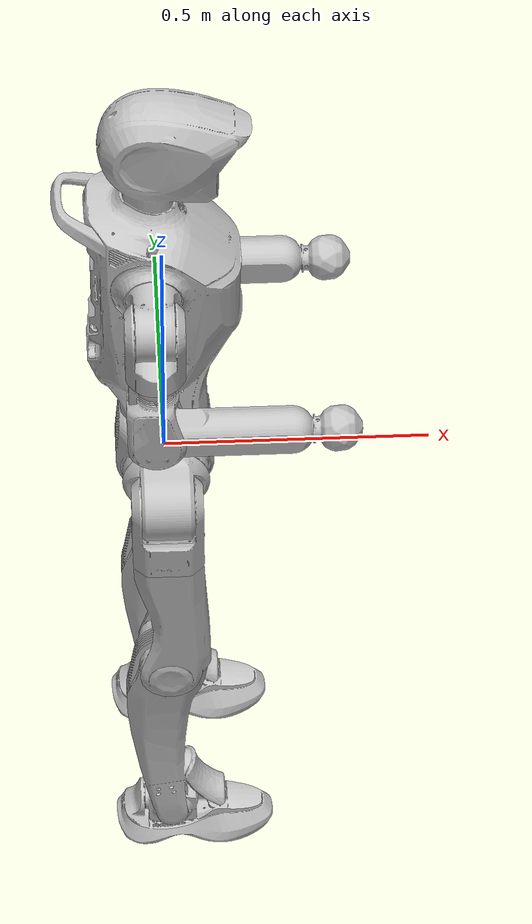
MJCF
<mujoco model="DR02_S">
  <compiler angle="radian" meshdir="meshes/" />
  <asset>
    <mesh name="base_link" file="base_link.STL" />
    <mesh name="body" file="body.STL" />
    <mesh name="left_shoulder_y_link" file="left_shoulder_y_link.STL" />
    <mesh name="left_shoulder_x_link" file="left_shoulder_x_link.STL" />
    <mesh name="left_shoulder_z_link" file="left_shoulder_z_link.STL" />
    <mesh name="left_elbow_link" file="left_elbow_link.STL" />
    <mesh name="right_shoulder_y_link" file="right_shoulder_y_link.STL" />
    <mesh name="right_shoulder_x_link" file="right_shoulder_x_link.STL" />
    <mesh name="right_shoulder_z_link" file="right_shoulder_z_link.STL" />
    <mesh name="right_elbow_link" file="right_elbow_link.STL" />
    <mesh name="left_hip_y_link" file="left_hip_y_link.STL" />
    <mesh name="left_hip_x_link" file="left_hip_x_link.STL" />
    <mesh name="left_hip_z_link" file="left_hip_z_link.STL" />
    <mesh name="left_knee_link" file="left_knee_link.STL" />
    <mesh name="left_ankle_y_link" file="left_ankle_y_link.STL" />
    <mesh name="left_ankle_x_link" file="left_ankle_x_link.STL" />
    <mesh name="right_hip_y_link" file="right_hip_y_link.STL" />
    <mesh name="right_hip_x_link" file="right_hip_x_link.STL" />
    <mesh name="right_hip_z_link" file="right_hip_z_link.STL" />
    <mesh name="right_knee_link" file="right_knee_link.STL" />
    <mesh name="right_ankle_y_link" file="right_ankle_y_link.STL" />
    <mesh name="right_ankle_x_link" file="right_ankle_x_link.STL" />
    <material name="base_link_mat" rgba="0.7529 0.7529 0.7529 1" specular="0" />
    <material name="body_mat" rgba="0.7529 0.7529 0.7529 1" specular="0" />
    <material name="left_shoulder_y_link_mat" rgba="0.7529 0.7529 0.7529 1" specular="0" />
    <material name="left_shoulder_x_link_mat" rgba="0.7529 0.7529 0.7529 1" specular="0" />
    <material name="left_shoulder_z_link_mat" rgba="0.7529 0.7529 0.7529 1" specular="0" />
    <material name="left_elbow_link_mat" rgba="0.7529 0.7529 0.7529 1" specular="0" />
    <material name="right_shoulder_y_link_mat" rgba="0.7529 0.7529 0.7529 1" specular="0" />
    <material name="right_shoulder_x_link_mat" rgba="0.7529 0.7529 0.7529 1" specular="0" />
    <material name="right_shoulder_z_link_mat" rgba="0.7529 0.7529 0.7529 1" specular="0" />
    <material name="right_elbow_link_mat" rgba="0.7529 0.7529 0.7529 1" specular="0" />
    <material name="left_hip_y_link_mat" rgba="0.7529 0.7529 0.7529 1" specular="0" />
    <material name="left_hip_x_link_mat" rgba="0.7529 0.7529 0.7529 1" specular="0" />
    <material name="left_hip_z_link_mat" rgba="0.7529 0.7529 0.7529 1" specular="0" />
    <material name="left_knee_link_mat" rgba="0.7529 0.7529 0.7529 1" specular="0" />
    <material name="left_ankle_y_link_mat" rgba="0.7529 0.7529 0.7529 1" specular="0" />
    <material name="left_ankle_x_link_mat" rgba="0.7529 0.7529 0.7529 1" specular="0" />
    <material name="right_hip_y_link_mat" rgba="0.7529 0.7529 0.7529 1" specular="0" />
    <material name="right_hip_x_link_mat" rgba="0.7529 0.7529 0.7529 1" specular="0" />
    <material name="right_hip_z_link_mat" rgba="0.7529 0.7529 0.7529 1" specular="0" />
    <material name="right_knee_link_mat" rgba="0.7529 0.7529 0.7529 1" specular="0" />
    <material name="right_ankle_y_link_mat" rgba="0.7529 0.7529 0.7529 1" specular="0" />
    <material name="right_ankle_x_link_mat" rgba="0.7529 0.7529 0.7529 1" specular="0" />
  </asset>

  <worldbody>
    <body name="base_link" pos="0 0 0">
      <freejoint/>
      <inertial pos="0.000093 0.000006 0.013442" mass="8.06269" fullinertia="0.047801 0.034616 0.038003 0.000012 -0.000497 -0.000003"/>
      <geom pos="0 0 0" group="1" contype="0" conaffinity="0" material="base_link_mat" type="mesh" mesh="base_link" />
      <geom pos="0 0 0" quat="0.7071068 0.7071068 0 0" rgba="0.9373 0.2667 0.2667 1" group="3" contype="1" conaffinity="1" type="cylinder" size="0.09 0.085" />
      <body name="body" pos="0 0 0.29">
        <joint name="waist_z_joint" type="hinge" axis="0 0 1" limited="true" range="-1.7453 3.6652" damping="0" frictionloss="0"/>
        <inertial pos="-0.02277 0.004208 0.185037" mass="21.337219" fullinertia="0.556188 0.598136 0.184687 0.001211 0.007316 -0.007763"/>
        <geom pos="0 0 0" group="1" contype="0" conaffinity="0" material="body_mat" type="mesh" mesh="body" />
        <geom pos="0 0 -0.13" rgba="0.9373 0.2667 0.2667 1" group="3" contype="1" conaffinity="1" type="box" size="0.075 0.075 0.06" />
        <geom pos="-0.01 0 0" rgba="0.9373 0.2667 0.2667 1" group="3" contype="1" conaffinity="1" type="box" size="0.11 0.12 0.05" />
        <geom pos="0 0 0.2" rgba="0.9373 0.2667 0.2667 1" group="3" contype="1" conaffinity="1" type="box" size="0.125 0.125 0.13" />
        <geom pos="-0.02 0 0.37" rgba="0.9373 0.2667 0.2667 1" group="3" contype="1" conaffinity="1" type="cylinder" size="0.05 0.03" />
        <geom pos="0 0 0.5" rgba="0.9373 0.2667 0.2667 1" group="3" contype="1" conaffinity="1" type="sphere" size="0.12" />
        <body name="left_shoulder_y_link" pos="-0.02 0.22315 0.2349">
          <joint name="left_shoulder_y_joint" type="hinge" axis="0 1 0" limited="true" range="-3.8397 1.5708" damping="0" frictionloss="0"/>
          <inertial pos="0.001479 -0.014833 0.000165" mass="1.400436" fullinertia="0.001991 0.001019 0.001997 0.000033 0.000001 -0.000002"/>
          <geom pos="0 0 0" group="1" contype="0" conaffinity="0" material="left_shoulder_y_link_mat" type="mesh" mesh="left_shoulder_y_link" />
          <body name="left_shoulder_x_link" pos="0 0 0">
            <joint name="left_shoulder_x_joint" type="hinge" axis="1 0 0" limited="true" range="-0.349066 3.49066" damping="0" frictionloss="0"/>
            <inertial pos="0.000432 0 -0.048362" mass="0.697075" fullinertia="0.001572 0.002243 0.001601 0 -0.000004 0"/>
            <geom pos="0 0 0" group="1" contype="0" conaffinity="0" material="left_shoulder_x_link_mat" type="mesh" mesh="left_shoulder_x_link" />
            <geom pos="0 0 -0.09" rgba="0.9373 0.2667 0.2667 1" group="3" contype="1" conaffinity="1" type="cylinder" size="0.055 0.0275" />
            <geom pos="0 0 0" quat="0.7071068 0 0.7071068 0" rgba="0.9373 0.2667 0.2667 1" group="3" contype="1" conaffinity="1" type="cylinder" size="0.055 0.055" />
            <body name="left_shoulder_z_link" pos="0 0 -0.265">
              <joint name="left_shoulder_z_joint" type="hinge" axis="0 0 1" limited="true" range="-2.9671 2.9671" damping="0" frictionloss="0"/>
              <inertial pos="-0.00426 -0.0003 0.094408" mass="1.720926" fullinertia="0.00612 0.005808 0.001952 0.000004 0.000286 0.000054"/>
              <geom pos="0 0 0" group="1" contype="0" conaffinity="0" material="left_shoulder_z_link_mat" type="mesh" mesh="left_shoulder_z_link" />
              <geom pos="-0.005 0 0.08" rgba="0.9373 0.2667 0.2667 1" group="3" contype="1" conaffinity="1" type="cylinder" size="0.057 0.02" />
              <body name="left_elbow_link" pos="0 0 0" quat="0.7071055 0 -0.7071081 0">
                <joint name="left_elbow_joint" type="hinge" axis="0 1 0" limited="true" range="-0.767945 1.74533" damping="0" frictionloss="0"/>
                <inertial pos="0.000055 0.000466 -0.101685" mass="1.710969" fullinertia="0.035402 0.035398 0.001296 0.000012 0.000011 0.000089"/>
                <geom pos="0 0 0" group="1" contype="0" conaffinity="0" material="left_elbow_link_mat" type="mesh" mesh="left_elbow_link" />
                <geom pos="0 0 0" quat="0.7071068 0.7071068 0 0" rgba="0.9373 0.2667 0.2667 1" group="3" contype="1" conaffinity="1" type="cylinder" size="0.055 0.055" />
                <geom pos="0 0 -0.17" rgba="0.9373 0.2667 0.2667 1" group="3" contype="1" conaffinity="1" type="cylinder" size="0.045 0.11" />
                <geom pos="0 0 -0.34" rgba="0.9373 0.2667 0.2667 1" group="3" contype="1" conaffinity="1" type="sphere" size="0.045" />
              </body>
            </body>
          </body>
        </body>
        <body name="right_shoulder_y_link" pos="-0.02 -0.22315 0.2349">
          <joint name="right_shoulder_y_joint" type="hinge" axis="0 1 0" limited="true" range="-3.8397 1.5708" damping="0" frictionloss="0"/>
          <inertial pos="0.001479 0.014833 -0.000165" mass="1.400436" fullinertia="0.001991 0.001019 0.001997 -0.000033 -0.000001 -0.000002"/>
          <geom pos="0 0 0" group="1" contype="0" conaffinity="0" material="right_shoulder_y_link_mat" type="mesh" mesh="right_shoulder_y_link" />
          <body name="right_shoulder_x_link" pos="0 0 0">
            <joint name="right_shoulder_x_joint" type="hinge" axis="1 0 0" limited="true" range="-3.49066 0.349066" damping="0" frictionloss="0"/>
            <inertial pos="0.000432 0 -0.048362" mass="0.697075" fullinertia="0.001572 0.002243 0.001601 0 -0.000004 0"/>
            <geom pos="0 0 0" group="1" contype="0" conaffinity="0" material="right_shoulder_x_link_mat" type="mesh" mesh="right_shoulder_x_link" />
            <geom pos="0 0 -0.09" rgba="0.9373 0.2667 0.2667 1" group="3" contype="1" conaffinity="1" type="cylinder" size="0.055 0.0275" />
            <geom pos="0 0 0" quat="0.7071068 0 0.7071068 0" rgba="0.9373 0.2667 0.2667 1" group="3" contype="1" conaffinity="1" type="cylinder" size="0.055 0.055" />
            <body name="right_shoulder_z_link" pos="0 0 -0.265">
              <joint name="right_shoulder_z_joint" type="hinge" axis="0 0 1" limited="true" range="-2.9671 2.9671" damping="0" frictionloss="0"/>
              <inertial pos="-0.00426 -0.0003 0.094408" mass="1.720926" fullinertia="0.00612 0.005808 0.001952 0.000004 0.000286 0.000054"/>
              <geom pos="0 0 0" group="1" contype="0" conaffinity="0" material="right_shoulder_z_link_mat" type="mesh" mesh="right_shoulder_z_link" />
              <geom pos="-0.005 0 0.08" rgba="0.9373 0.2667 0.2667 1" group="3" contype="1" conaffinity="1" type="cylinder" size="0.057 0.02" />
              <body name="right_elbow_link" pos="0 0 0" quat="0.7071055 0 -0.7071081 0">
                <joint name="right_elbow_joint" type="hinge" axis="0 1 0" limited="true" range="-0.767945 1.74533" damping="0" frictionloss="0"/>
                <inertial pos="0.000055 0.000466 -0.101685" mass="1.710969" fullinertia="0.035402 0.035398 0.001296 0.000012 0.000011 0.000089"/>
                <geom pos="0 0 0" group="1" contype="0" conaffinity="0" material="right_elbow_link_mat" type="mesh" mesh="right_elbow_link" />
                <geom pos="0 0 0" quat="0.7071068 0.7071068 0 0" rgba="0.9373 0.2667 0.2667 1" group="3" contype="1" conaffinity="1" type="cylinder" size="0.055 0.055" />
                <geom pos="0 0 -0.17" rgba="0.9373 0.2667 0.2667 1" group="3" contype="1" conaffinity="1" type="cylinder" size="0.045 0.11" />
                <geom pos="0 0 -0.34" rgba="0.9373 0.2667 0.2667 1" group="3" contype="1" conaffinity="1" type="sphere" size="0.045" />
              </body>
            </body>
          </body>
        </body>
        <body name="imu_head_link" pos="-0.0003333 0.021947 0.56429">
        </body>
        <body name="imu_base_link" pos="-0.0003333 0.0014869 -0.3546">
        </body>
      </body>
      <body name="left_hip_y_link" pos="0 0.1614 0">
        <joint name="left_hip_y_joint" type="hinge" axis="0 1 0" limited="true" range="-2.7925 1.5708" damping="0" frictionloss="0"/>
        <inertial pos="0.004243 -0.007887 0.001484" mass="2.633192" fullinertia="0.005574 0.005409 0.005665 0.000149 -0.000057 -0.000149"/>
        <geom pos="0 0 0" group="1" contype="0" conaffinity="0" material="left_hip_y_link_mat" type="mesh" mesh="left_hip_y_link" />
        <geom pos="0 0 0" quat="0.7071068 0 0.7071068 0" rgba="0.9373 0.2667 0.2667 1" group="3" contype="1" conaffinity="1" type="cylinder" size="0.07 0.0675" />
        <body name="left_hip_x_link" pos="0 0 0">
          <joint name="left_hip_x_joint" type="hinge" axis="1 0 0" limited="true" range="-0.349066 2.618" damping="0" frictionloss="0"/>
          <inertial pos="0.001042 0.00317 -0.074161" mass="1.131509" fullinertia="0.004145 0.005869 0.003914 0.00001 0.000131 -0.000028"/>
          <geom pos="0 0 0" group="1" contype="0" conaffinity="0" material="left_hip_x_link_mat" type="mesh" mesh="left_hip_x_link" />
          <body name="left_hip_z_link" pos="0 0 -0.1282">
            <joint name="left_hip_z_joint" type="hinge" axis="0 0 1" limited="true" range="-0.5236 3.6652" damping="0" frictionloss="0"/>
            <inertial pos="0.008747 -0.002664 -0.111374" mass="2.684372" fullinertia="0.030123 0.028514 0.007636 0.000088 -0.001323 0.001236"/>
            <geom pos="0 0 0" group="1" contype="0" conaffinity="0" material="left_hip_z_link_mat" type="mesh" mesh="left_hip_z_link" />
            <geom pos="0 0 -0.115" rgba="0.9373 0.2667 0.2667 1" group="3" contype="1" conaffinity="1" type="cylinder" size="0.07 0.11" />
            <body name="left_knee_link" pos="0 0 -0.2912">
              <joint name="left_knee_joint" type="hinge" axis="0 1 0" limited="true" range="-0.17453 2.4958" damping="0" frictionloss="0"/>
              <inertial pos="-0.004924 -0.001316 -0.092649" mass="4.246652" fullinertia="0.087826 0.087013 0.009313 0.000053 0.002385 -0.001498"/>
              <geom pos="0 0 0" group="1" contype="0" conaffinity="0" material="left_knee_link_mat" type="mesh" mesh="left_knee_link" />
              <geom pos="0 0 0" quat="0.7071068 0.7071068 0 0" rgba="0.9373 0.2667 0.2667 1" group="3" contype="1" conaffinity="1" type="cylinder" size="0.06 0.07" />
              <geom pos="-0.02 0 -0.21" rgba="0.9373 0.2667 0.2667 1" group="3" contype="1" conaffinity="1" type="cylinder" size="0.06 0.14" />
              <body name="left_ankle_y_link" pos="0 0 -0.41">
                <joint name="left_ankle_y_joint" type="hinge" axis="0 1 0" limited="true" range="-1.0472 0.7854" damping="0" frictionloss="0"/>
                <inertial pos="0.000479 0.003282 0.000327" mass="1.377835" fullinertia="0.001529 0.001772 0.001906 -0.000012 0.000002 -0.000003"/>
                <geom pos="0 0 0" group="1" contype="0" conaffinity="0" material="left_ankle_y_link_mat" type="mesh" mesh="left_ankle_y_link" />
                <geom pos="0 0 0" quat="0.7071068 0.7071068 0 0" rgba="0.9373 0.2667 0.2667 1" group="3" contype="1" conaffinity="1" type="cylinder" size="0.044 0.055" />
                <body name="left_ankle_x_link" pos="0 0 0">
                  <joint name="left_ankle_x_joint" type="hinge" axis="1 0 0" limited="true" range="-0.61087 0.61087" damping="0" frictionloss="0"/>
                  <inertial pos="0.046836 0.000068 -0.032705" mass="1.484752" fullinertia="0.002428 0.008621 0.008077 0.000004 0.000496 0.000002"/>
                  <geom pos="0 0 0" group="1" contype="0" conaffinity="0" material="left_ankle_x_link_mat" type="mesh" mesh="left_ankle_x_link" />
                  <geom pos="0.045 0 -0.045" rgba="0.9373 0.2667 0.2667 1" group="3" contype="1" conaffinity="1" type="box" size="0.15 0.055 0.03" />
                </body>
              </body>
            </body>
          </body>
        </body>
      </body>
      <body name="right_hip_y_link" pos="0 -0.1614 0">
        <joint name="right_hip_y_joint" type="hinge" axis="0 1 0" limited="true" range="-2.7925 1.5708" damping="0" frictionloss="0"/>
        <inertial pos="-0.004243 0.007887 0.001484" mass="2.633192" fullinertia="0.005574 0.005409 0.005665 0.000149 0.000057 0.000149"/>
        <geom pos="0 0 0" group="1" contype="0" conaffinity="0" material="right_hip_y_link_mat" type="mesh" mesh="right_hip_y_link" />
        <geom pos="0 0 0" quat="0.7071068 0 0.7071068 0" rgba="0.9373 0.2667 0.2667 1" group="3" contype="1" conaffinity="1" type="cylinder" size="0.07 0.0675" />
        <body name="right_hip_x_link" pos="0 0 0">
          <joint name="right_hip_x_joint" type="hinge" axis="1 0 0" limited="true" range="-2.618 0.349066" damping="0" frictionloss="0"/>
          <inertial pos="-0.001042 -0.00317 -0.074161" mass="1.131509" fullinertia="0.004145 0.005869 0.003914 0.00001 -0.000131 0.000028"/>
          <geom pos="0 0 0" group="1" contype="0" conaffinity="0" material="right_hip_x_link_mat" type="mesh" mesh="right_hip_x_link" />
          <body name="right_hip_z_link" pos="0 0 -0.1282">
            <joint name="right_hip_z_joint" type="hinge" axis="0 0 1" limited="true" range="-3.6652 0.5236" damping="0" frictionloss="0"/>
            <inertial pos="0.008747 -0.002664 -0.111374" mass="2.684372" fullinertia="0.030123 0.028514 0.007636 0.000088 -0.001323 0.001236"/>
            <geom pos="0 0 0" group="1" contype="0" conaffinity="0" material="right_hip_z_link_mat" type="mesh" mesh="right_hip_z_link" />
            <geom pos="0 0 -0.115" rgba="0.9373 0.2667 0.2667 1" group="3" contype="1" conaffinity="1" type="cylinder" size="0.07 0.11" />
            <body name="right_knee_link" pos="0 0 -0.2912">
              <joint name="right_knee_joint" type="hinge" axis="0 1 0" limited="true" range="-0.17453 2.4958" damping="0" frictionloss="0"/>
              <inertial pos="-0.004924 -0.001316 -0.092649" mass="4.246652" fullinertia="0.087826 0.087013 0.009313 0.000053 0.002385 -0.001498"/>
              <geom pos="0 0 0" group="1" contype="0" conaffinity="0" material="right_knee_link_mat" type="mesh" mesh="right_knee_link" />
              <geom pos="0 0 0" quat="0.7071068 0.7071068 0 0" rgba="0.9373 0.2667 0.2667 1" group="3" contype="1" conaffinity="1" type="cylinder" size="0.06 0.07" />
              <geom pos="-0.02 0 -0.21" rgba="0.9373 0.2667 0.2667 1" group="3" contype="1" conaffinity="1" type="cylinder" size="0.06 0.14" />
              <body name="right_ankle_y_link" pos="0 0 -0.41">
                <joint name="right_ankle_y_joint" type="hinge" axis="0 1 0" limited="true" range="-1.0472 0.7854" damping="0" frictionloss="0"/>
                <inertial pos="0.000479 0.003282 0.000327" mass="1.377835" fullinertia="0.001529 0.001772 0.001906 -0.000012 0.000002 -0.000003"/>
                <geom pos="0 0 0" group="1" contype="0" conaffinity="0" material="right_ankle_y_link_mat" type="mesh" mesh="right_ankle_y_link" />
                <geom pos="0 0 0" quat="0.7071068 0.7071068 0 0" rgba="0.9373 0.2667 0.2667 1" group="3" contype="1" conaffinity="1" type="cylinder" size="0.044 0.055" />
                <body name="right_ankle_x_link" pos="0 0 0">
                  <joint name="right_ankle_x_joint" type="hinge" axis="1 0 0" limited="true" range="-0.61087 0.61087" damping="0" frictionloss="0"/>
                  <inertial pos="0.046836 0.000068 -0.032705" mass="1.484752" fullinertia="0.002428 0.008621 0.008077 0.000004 0.000496 0.000002"/>
                  <geom pos="0 0 0" group="1" contype="0" conaffinity="0" material="right_ankle_x_link_mat" type="mesh" mesh="right_ankle_x_link" />
                  <geom pos="0.045 0 -0.045" rgba="0.9373 0.2667 0.2667 1" group="3" contype="1" conaffinity="1" type="box" size="0.15 0.055 0.03" />
                </body>
              </body>
            </body>
          </body>
        </body>
      </body>
    </body>
  </worldbody>
  <actuator>
    <motor name="waist_z_joint_motor" joint="waist_z_joint" gear="1" ctrllimited="true" ctrlrange="-137 137" />
    <motor name="left_shoulder_y_joint_motor" joint="left_shoulder_y_joint" gear="1" ctrllimited="true" ctrlrange="-137 137" />
    <motor name="left_shoulder_x_joint_motor" joint="left_shoulder_x_joint" gear="1" ctrllimited="true" ctrlrange="-137 137" />
    <motor name="left_shoulder_z_joint_motor" joint="left_shoulder_z_joint" gear="1" ctrllimited="true" ctrlrange="-137 137" />
    <motor name="left_elbow_joint_motor" joint="left_elbow_joint" gear="1" ctrllimited="true" ctrlrange="-137 137" />
    <motor name="right_shoulder_y_joint_motor" joint="right_shoulder_y_joint" gear="1" ctrllimited="true" ctrlrange="-137 137" />
    <motor name="right_shoulder_x_joint_motor" joint="right_shoulder_x_joint" gear="1" ctrllimited="true" ctrlrange="-137 137" />
    <motor name="right_shoulder_z_joint_motor" joint="right_shoulder_z_joint" gear="1" ctrllimited="true" ctrlrange="-137 137" />
    <motor name="right_elbow_joint_motor" joint="right_elbow_joint" gear="1" ctrllimited="true" ctrlrange="-137 137" />
    <motor name="left_hip_y_joint_motor" joint="left_hip_y_joint" gear="1" ctrllimited="true" ctrlrange="-363 363" />
    <motor name="left_hip_x_joint_motor" joint="left_hip_x_joint" gear="1" ctrllimited="true" ctrlrange="-363 363" />
    <motor name="left_hip_z_joint_motor" joint="left_hip_z_joint" gear="1" ctrllimited="true" ctrlrange="-137 137" />
    <motor name="left_knee_joint_motor" joint="left_knee_joint" gear="1" ctrllimited="true" ctrlrange="-363 363" />
    <motor name="left_ankle_y_joint_motor" joint="left_ankle_y_joint" gear="1" ctrllimited="true" ctrlrange="-137 137" />
    <motor name="left_ankle_x_joint_motor" joint="left_ankle_x_joint" gear="1" ctrllimited="true" ctrlrange="-50 50" />
    <motor name="right_hip_y_joint_motor" joint="right_hip_y_joint" gear="1" ctrllimited="true" ctrlrange="-363 363" />
    <motor name="right_hip_x_joint_motor" joint="right_hip_x_joint" gear="1" ctrllimited="true" ctrlrange="-363 363" />
    <motor name="right_hip_z_joint_motor" joint="right_hip_z_joint" gear="1" ctrllimited="true" ctrlrange="-137 137" />
    <motor name="right_knee_joint_motor" joint="right_knee_joint" gear="1" ctrllimited="true" ctrlrange="-363 363" />
    <motor name="right_ankle_y_joint_motor" joint="right_ankle_y_joint" gear="1" ctrllimited="true" ctrlrange="-137 137" />
    <motor name="right_ankle_x_joint_motor" joint="right_ankle_x_joint" gear="1" ctrllimited="true" ctrlrange="-50 50" />
  </actuator>
</mujoco>
